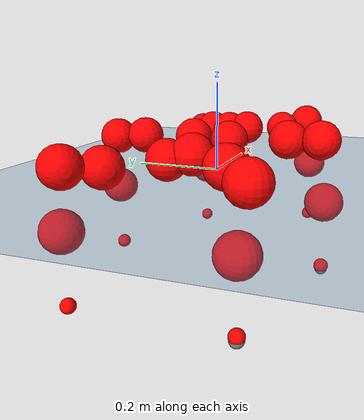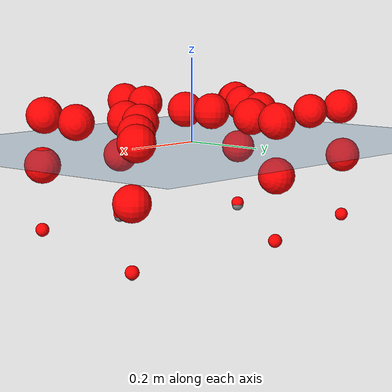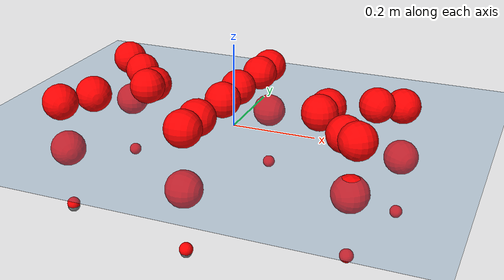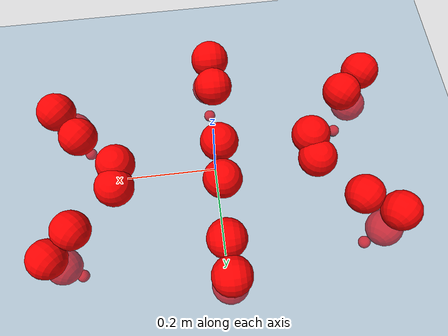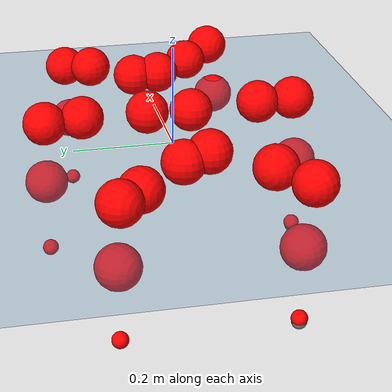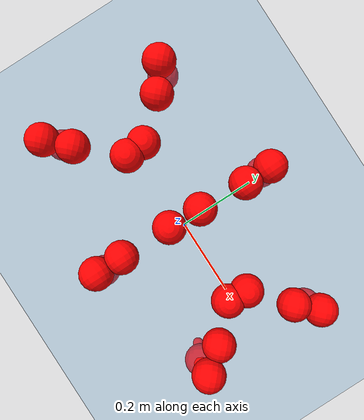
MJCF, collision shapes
<mujoco model="Golem">
  <compiler angle="radian" assetdir="assets" balanceinertia="true" inertiafromgeom="false"/>

  <option timestep="0.005" density="1.2" viscosity="2e-05"/>

  <size nkey="1"/>

  <visual>
    <quality shadowsize="8192"/>
    <map shadowclip="0.5"/>
  </visual>

  <default>
    <default class="/">
      <joint armature="0.01" damping="0.01" frictionloss="0.01"/>
      <geom contype="0" conaffinity="0" group="1" solref="-1000 -80"/>
      <site size="0.01 0.005 0.005" group="5"/>
      <general forcelimited="true" biastype="affine" gainprm="25" biasprm="0 -25 -0.5"/>
      <default class="visual">
        <geom type="mesh" group="2"/>
      </default>
      <default class="collision">
        <geom group="3"/>
      </default>
      <default class="foot">
        <geom size="0.01 0 0" condim="6" group="4" priority="1" solimp="0.015 1 0.01"/>
      </default>
      <default class="reward_collision_sphere">
        <geom group="5" rgba="1 0 0 1"/>
      </default>
    </default>
  </default>

  <asset>
    <texture type="skybox" colorspace="auto" name="//unnamed_texture_0" builtin="gradient" rgb1="0.95 0.95 0.95" rgb2="0.95 0.95 0.95" width="100" height="600"/>
    <texture type="2d" colorspace="auto" name="texplane" builtin="checker" rgb1="0.345 0.575 0.748" rgb2="0.345 0.575 0.748" markrgb="1 1 1" width="512" height="512"/>
    <material name="MatPlane" class="/" texture="texplane" texuniform="true" texrepeat="2 2" specular="0.9"/>
    <mesh name="body" class="/" file="body.stl" scale="0.001 0.001 0.001"/>
    <mesh name="coxa" class="/" file="coxa.stl" scale="0.001 0.001 0.001"/>
    <mesh name="femur" class="/" file="femur.stl" scale="0.001 0.001 0.001"/>
    <mesh name="tibia" class="/" file="tibia.stl" scale="0.001 0.001 0.001"/>
    <mesh name="tarsus" class="/" file="tarsus.stl" scale="0.001 0.001 0.001"/>
  </asset>

  <worldbody>
    <geom name="floor" class="/" size="100 100 0.125" type="plane" group="0" material="MatPlane"/>
    <light name="toplight_shadow" class="/" pos="0 0 5" dir="0.0990148 0.0990148 -0.990148" type="directional" ambient="0.04 0.04 0.04" diffuse="0.55 0.55 0.55" specular="0.12 0.12 0.12"/>
    <light name="toplight_fill" class="/" pos="0 0 5" dir="0.0990148 0.0990148 -0.990148" type="directional" castshadow="false" ambient="0.04 0.04 0.04" diffuse="0.3 0.3 0.3" specular="0.08 0.08 0.08"/>
    <body name="trunk" pos="0.000382596 0.0021394 0.00855164" quat="0.999986 -0.000872415 -0.00368054 0.00367909">
      <inertial pos="-0.00562259 0.00566997 -0.00910323" quat="0.999741 -0.00340703 0.000297991 -0.0224969" mass="5.40068" diaginertia="0.0583947 0.00167745 0.0157076"/>
      <joint name="//unnamed_joint_0" type="free"/>
      <geom name="//unnamed_geom_1" class="/" pos="0 0 0.0701551" quat="1 0 0 0" type="mesh" rgba="0.9 0.9 0.9 1" mesh="body"/>
      <site name="imu" class="/" pos="0.199636 -0.0546717 0.0402714" size="0.0105639"/>
      <camera name="track" class="/" pos="0 -1.35568 0" quat="0.707107 0.707107 0 0" mode="trackcom"/>
      <camera name="ego_camera" class="/" pos="0.181371 0 0.109617" quat="-0.5 -0.5 0.5 0.5"/>
      <body name="coxa_RR" pos="-0.244736 -0.0555454 0.070141" quat="0.379608 -0.00300748 0.00556693 -0.925126">
        <inertial pos="-0.00972968 -0.00427758 0.00745806" quat="0.999556 -0.00831474 -0.0041653 -0.0283229" mass="0.211491" diaginertia="0.058117 0.00127227 0.0135158"/>
        <joint name="coxa_joint_RR" class="/" pos="0 0 0" axis="0.0199224 0.0193497 -0.999614" range="-3.25617 3.22385" armature="0.0100443" damping="0.0222095" frictionloss="0.00782373"/>
        <geom name="//unnamed_geom_2" class="/" type="mesh" rgba="0.2 0.2 0.2 1" mesh="coxa"/>
        <geom name="//unnamed_geom_3" class="reward_collision_sphere" size="0.0422557" pos="-0.0418549 0 0"/>
        <body name="femur_RR" pos="0.0909361 0.00628645 0.00163585" quat="0.500828 -0.495771 0.498846 0.504515">
          <inertial pos="0.000135093 -0.0136264 -0.00713272" quat="0.99913 0.012975 -0.0386969 -0.00861108" mass="0.268596" diaginertia="0.0545963 0.00176949 0.0179313"/>
          <joint name="femur_joint_RR" class="/" pos="0 0 0" axis="0.000103286 -0.00990835 -0.999951" range="-3.2301 3.23069" armature="0.00516889" damping="0" frictionloss="0.0107224"/>
          <geom name="//unnamed_geom_4" class="/" type="mesh" rgba="0.9 0.9 0.9 1" mesh="femur"/>
          <geom name="//unnamed_geom_5" class="reward_collision_sphere" size="0.0422557"/>
          <body name="tibia_RR" pos="0.00820174 -0.0790438 -0.00167596" quat="2.42288e-05 1 -3.73956e-05 1.74075e-06">
            <inertial pos="-0.00186811 -0.0126135 -0.0025309" quat="0.999999 5.94864e-05 0.00126333 -0.000688005" mass="0.262449" diaginertia="0.0591027 0.00158481 0.0178472"/>
            <joint name="tibia_joint_RR" class="/" pos="0 0 0" axis="-0.0128622 0.0595597 0.998142" stiffness="0.0459928" range="-3.39328 3.08114" armature="0.0149067" damping="0.0448068" frictionloss="0.00289996"/>
            <geom name="//unnamed_geom_6" class="/" type="mesh" rgba="0.2 0.2 0.2 1" mesh="tibia"/>
            <geom name="//unnamed_geom_7" class="reward_collision_sphere" size="0.0422557"/>
            <body name="tarsus_RR" pos="0.124584 -0.00992451 0.0123764" quat="0.999994 -0.00235987 0.00109137 0.00248103">
              <inertial pos="0.0775761 0.00271169 -0.00925394" quat="0.517273 0.472971 0.49864 0.509985" mass="0.270263" diaginertia="0.0589471 0.00172191 0.014877"/>
              <joint name="tarsus_joint_RR" class="/" pos="0 0 0" axis="0.0314431 0.0288251 0.99909" range="-2.991 3.15554" armature="0.0133086" damping="0" frictionloss="0.00976232"/>
              <geom name="//unnamed_geom_8" class="/" type="mesh" rgba="0.9 0.9 0.9 1" mesh="tarsus"/>
              <geom name="foot_1" class="foot" size="0.0148483" pos="0.156258 0 0" quat="0 -0.707107 0 0.707107"/>
              <geom name="//unnamed_geom_10" class="reward_collision_sphere" size="0.0422557"/>
              <geom name="//unnamed_geom_11" class="reward_collision_sphere" size="0.0158459" pos="0.14998 0 0"/>
              <site name="foot_1" class="foot" pos="0.156258 0 0" quat="0 -0.707107 0 0.707107" size="0.0105639"/>
            </body>
          </body>
        </body>
      </body>
      <body name="coxa_RM" pos="-0.0141312 -0.0776192 0.0663072" quat="0.707273 0.00141659 -0.000925826 -0.706938">
        <inertial pos="-0.000402028 0.00117406 0.0110843" quat="0.997614 0.0376031 0.010529 -0.0569421" mass="0.211096" diaginertia="0.0435213 0.00099143 0.0114288"/>
        <joint name="coxa_joint_RM" class="/" pos="0 0 0" axis="0.0368757 -0.0547774 -0.997817" stiffness="0.0326288" range="-3.14732 3.28145" armature="0.0125655" damping="2.06484e-06" frictionloss="0.00597383"/>
        <geom name="//unnamed_geom_12" class="/" type="mesh" rgba="0.2 0.2 0.2 1" mesh="coxa"/>
        <geom name="//unnamed_geom_13" class="reward_collision_sphere" size="0.0422557" pos="-0.0418549 0 0"/>
        <body name="femur_RM" pos="0.0930692 -0.00276342 0.00725022" quat="0.499992 -0.500065 0.499989 0.499954">
          <inertial pos="0.000557017 -0.00960269 0.00118587" quat="0.999945 -0.0075048 -0.00584479 -0.00440582" mass="0.217813" diaginertia="0.0612358 0.00144513 0.0174259"/>
          <joint name="femur_joint_RM" class="/" pos="0 0 0" axis="0.00291853 -0.000884879 -0.999995" stiffness="0.049675" range="-3.35173 3.00331" armature="0.00579785" damping="0.0153434" frictionloss="0.00431902"/>
          <geom name="//unnamed_geom_14" class="/" type="mesh" rgba="0.9 0.9 0.9 1" mesh="femur"/>
          <geom name="//unnamed_geom_15" class="reward_collision_sphere" size="0.0422557"/>
          <body name="tibia_RM" pos="-0.00258988 -0.071468 -0.000595855" quat="-0.000489077 1 6.68572e-05 8.23398e-05">
            <inertial pos="-0.000400323 8.25399e-05 -0.0100468" quat="0.999912 0.00376046 -0.012333 0.00313201" mass="0.197855" diaginertia="0.0523599 0.00140265 0.0171021"/>
            <joint name="tibia_joint_RM" class="/" pos="0 0 0" axis="-0.0278905 -0.0559247 0.998045" range="-3.25421 2.95846" armature="0.0173815" damping="0.010871" frictionloss="0.00394468"/>
            <geom name="//unnamed_geom_16" class="/" type="mesh" rgba="0.2 0.2 0.2 1" mesh="tibia"/>
            <geom name="//unnamed_geom_17" class="reward_collision_sphere" size="0.0422557"/>
            <body name="tarsus_RM" pos="0.137212 0.0111925 -0.00302916" quat="0.999989 0.000795184 0.000981781 0.0045074">
              <inertial pos="0.0854048 0.00162623 0.000734822" quat="0.498997 0.502887 0.500126 0.497977" mass="0.174295" diaginertia="0.0447653 0.0012144 0.0131577"/>
              <joint name="tarsus_joint_RM" class="/" pos="0 0 0" axis="0.0261109 -0.0089446 0.999619" stiffness="0.00256739" range="-3.24228 3.1954" armature="0.0138879" damping="0" frictionloss="0.00888069"/>
              <geom name="//unnamed_geom_18" class="/" type="mesh" rgba="0.9 0.9 0.9 1" mesh="tarsus"/>
              <geom name="foot_2" class="foot" size="0.01376" pos="0.156258 0 0" quat="0 -0.707107 0 0.707107"/>
              <geom name="//unnamed_geom_20" class="reward_collision_sphere" size="0.0422557"/>
              <geom name="//unnamed_geom_21" class="reward_collision_sphere" size="0.0158459" pos="0.14998 0 0"/>
              <site name="foot_2" class="foot" pos="0.156258 0 0" quat="0 -0.707107 0 0.707107" size="0.0105639"/>
            </body>
          </body>
        </body>
      </body>
      <body name="coxa_RF" pos="0.242675 -0.0434861 0.0599132" quat="0.923829 -0.000303847 -3.14068e-05 -0.382805">
        <inertial pos="0.012886 -0.000729577 0.00996394" quat="0.999147 -0.0128765 -0.0373802 0.0119168" mass="0.224675" diaginertia="0.0424083 0.00114436 0.0131991"/>
        <joint name="coxa_joint_RF" class="/" pos="0 0 0" axis="-0.00733459 0.0131869 -0.999886" stiffness="0.0512575" range="-3.149 3.30633" armature="0.0116332" damping="0" frictionloss="0.00423202"/>
        <geom name="//unnamed_geom_22" class="/" type="mesh" rgba="0.2 0.2 0.2 1" mesh="coxa"/>
        <geom name="//unnamed_geom_23" class="reward_collision_sphere" size="0.0422557" pos="-0.0418549 0 0"/>
        <body name="femur_RF" pos="0.0705656 0.00168908 -0.00765258" quat="0.501743 -0.50089 0.501879 0.495461">
          <inertial pos="-0.00184637 0.00040201 0.00328737" quat="0.999332 0.0288483 -0.00234808 0.0223057" mass="0.228517" diaginertia="0.0588786 0.00160594 0.0173814"/>
          <joint name="femur_joint_RF" class="/" pos="0 0 0" axis="0.0209674 -0.0119531 -0.999709" stiffness="0.00210624" range="-3.26603 3.16553" armature="0.00947578" damping="0.0145047" frictionloss="0.00983611"/>
          <geom name="//unnamed_geom_24" class="/" type="mesh" rgba="0.9 0.9 0.9 1" mesh="femur"/>
          <geom name="//unnamed_geom_25" class="reward_collision_sphere" size="0.0422557"/>
          <body name="tibia_RF" pos="-0.0146998 -0.0721761 -0.0109453" quat="0.000122865 0.999996 -0.00156726 -0.0021408">
            <inertial pos="-0.00242072 0.0123041 0.0104729" quat="0.998251 0.0132235 -0.057564 -0.00261533" mass="0.257164" diaginertia="0.0662607 0.0017479 0.0155287"/>
            <joint name="tibia_joint_RF" class="/" pos="0 0 0" axis="0.0570915 -0.0139076 0.998272" stiffness="0.0704415" range="-3.0046 3.13333" armature="0.0106128" damping="0.0403978" frictionloss="0.0147454"/>
            <geom name="//unnamed_geom_26" class="/" type="mesh" rgba="0.2 0.2 0.2 1" mesh="tibia"/>
            <geom name="//unnamed_geom_27" class="reward_collision_sphere" size="0.0422557"/>
            <body name="tarsus_RF" pos="0.11672 0.00442005 0.0133362" quat="1 -3.63769e-05 -3.18611e-05 3.79818e-06">
              <inertial pos="0.0804879 -0.00220589 0.00101742" quat="0.501889 0.489328 0.519514 0.488642" mass="0.254131" diaginertia="0.0616566 0.00175717 0.0166937"/>
              <joint name="tarsus_joint_RF" class="/" pos="0 0 0" axis="0.0151336 -0.0679016 0.997577" range="-3.10307 3.19743" armature="0.0133355" damping="0.0131978" frictionloss="0.00656925"/>
              <geom name="//unnamed_geom_28" class="/" type="mesh" rgba="0.9 0.9 0.9 1" mesh="tarsus"/>
              <geom name="foot_3" class="foot" size="0.00795627" pos="0.156258 0 0" quat="0 -0.707107 0 0.707107"/>
              <geom name="//unnamed_geom_30" class="reward_collision_sphere" size="0.0422557"/>
              <geom name="//unnamed_geom_31" class="reward_collision_sphere" size="0.0158459" pos="0.14998 0 0"/>
              <site name="foot_3" class="foot" pos="0.156258 0 0" quat="0 -0.707107 0 0.707107" size="0.0105639"/>
            </body>
          </body>
        </body>
      </body>
      <body name="coxa_LR" pos="-0.251923 0.0537715 0.0572291" quat="0.380958 -0.00205301 0.00497427 0.924577">
        <inertial pos="0.00675179 -0.0105735 0.0112858" quat="0.999906 -0.0114409 0.00429385 -0.00615992" mass="0.22902" diaginertia="0.0540222 0.00153962 0.0152139"/>
        <joint name="coxa_joint_LR" class="/" pos="0 0 0" axis="-0.0148646 0.0474022 -0.998765" range="-3.01389 2.89662" armature="0.0098529" damping="0.0035641" frictionloss="0.00558658"/>
        <geom name="//unnamed_geom_32" class="/" type="mesh" rgba="0.2 0.2 0.2 1" mesh="coxa"/>
        <geom name="//unnamed_geom_33" class="reward_collision_sphere" size="0.0422557" pos="-0.0418549 0 0"/>
        <body name="femur_LR" pos="0.0835705 -0.0072858 -0.00290306" quat="0.501365 -0.501255 0.499279 0.498093">
          <inertial pos="-0.00103399 -0.00930823 -0.00448017" quat="0.9979 0.00719453 0.0240698 0.059696" mass="0.265065" diaginertia="0.0482555 0.00157143 0.0182561"/>
          <joint name="femur_joint_LR" class="/" pos="0 0 0" axis="0.0738026 -0.0120069 0.997201" range="-3.00763 3.03175" armature="0.00358064" damping="0" frictionloss="0.0109072"/>
          <geom name="//unnamed_geom_34" class="/" type="mesh" rgba="0.9 0.9 0.9 1" mesh="femur"/>
          <geom name="//unnamed_geom_35" class="reward_collision_sphere" size="0.0422557"/>
          <body name="tibia_LR" pos="-0.0108868 -0.0769279 0.00976272" quat="0.00103947 0.999997 -0.000405009 -0.0021897">
            <inertial pos="0.00699627 -0.00488394 -0.0103379" quat="0.998961 -0.0309883 -0.00863042 0.0322879" mass="0.192836" diaginertia="0.0490878 0.00126601 0.016295"/>
            <joint name="tibia_joint_LR" class="/" pos="0 0 0" axis="0.000316693 0.00103895 -0.999999" range="-3.39937 2.94887" armature="0.0165467" damping="0.000978083" frictionloss="0.0107774"/>
            <geom name="//unnamed_geom_36" class="/" type="mesh" rgba="0.2 0.2 0.2 1" mesh="tibia"/>
            <geom name="//unnamed_geom_37" class="reward_collision_sphere" size="0.0422557"/>
            <body name="tarsus_LR" pos="0.120621 0.00722353 0.00174728" quat="1 -6.98123e-05 -8.45771e-05 -0.000306952">
              <inertial pos="0.0838927 0.0115446 -0.00258142" quat="0.501451 0.50134 0.498377 0.498824" mass="0.288015" diaginertia="0.0562187 0.00124197 0.0152443"/>
              <joint name="tarsus_joint_LR" class="/" pos="0 0 0" axis="-0.000263601 -0.000228947 -1" range="-3.08327 2.97718" armature="0.0111272" damping="0.0308802" frictionloss="0.0147357"/>
              <geom name="//unnamed_geom_38" class="/" type="mesh" rgba="0.9 0.9 0.9 1" mesh="tarsus"/>
              <geom name="foot_4" class="foot" size="0.00743062" pos="0.156258 0 0" quat="0.707107 0 -0.707107 0"/>
              <geom name="//unnamed_geom_40" class="reward_collision_sphere" size="0.0422557"/>
              <geom name="//unnamed_geom_41" class="reward_collision_sphere" size="0.0158459" pos="0.14998 0 0"/>
              <site name="foot_4" class="foot" pos="0.156258 0 0" quat="0.707107 0 -0.707107 0" size="0.0105639"/>
            </body>
          </body>
        </body>
      </body>
      <body name="coxa_LM" pos="-0.0106365 0.0928489 0.0676865" quat="0.706987 -0.00155256 0.000970126 0.707224">
        <inertial pos="-0.00053712 4.32222e-05 0.0127398" quat="0.999925 -0.00755048 -0.000578972 0.00964746" mass="0.239918" diaginertia="0.0462726 0.0013434 0.0148145"/>
        <joint name="coxa_joint_LM" class="/" pos="0 0 0" axis="0.0328602 0.0163002 -0.999327" range="-3.09309 3.12812" armature="0.00784026" damping="0.0546735" frictionloss="0.010246"/>
        <geom name="//unnamed_geom_42" class="/" type="mesh" rgba="0.2 0.2 0.2 1" mesh="coxa"/>
        <geom name="//unnamed_geom_43" class="reward_collision_sphere" size="0.0422557" pos="-0.0418549 0 0"/>
        <body name="femur_LM" pos="0.0853331 -0.00728999 -0.00332261" quat="0.499969 -0.500018 0.499937 0.500076">
          <inertial pos="0.00958899 0.00173583 0.014198" quat="0.998804 -0.0461542 -0.00846229 0.0137524" mass="0.247229" diaginertia="0.0573064 0.00151532 0.0171544"/>
          <joint name="femur_joint_LM" class="/" pos="0 0 0" axis="0.00952357 0.0354757 0.999325" range="-3.20994 3.41481" armature="0.0144295" damping="0.018784" frictionloss="0.0163612"/>
          <geom name="//unnamed_geom_44" class="/" type="mesh" rgba="0.9 0.9 0.9 1" mesh="femur"/>
          <geom name="//unnamed_geom_45" class="reward_collision_sphere" size="0.0422557"/>
          <body name="tibia_LM" pos="0.00521057 -0.0740082 0.00082033" quat="0.00184656 0.999994 0.00225471 -0.00184675">
            <inertial pos="-0.00614884 0.000684386 -0.00125328" quat="0.999938 0.00836612 -0.0044705 -0.00578659" mass="0.252567" diaginertia="0.0629794 0.00166483 0.0184068"/>
            <joint name="tibia_joint_LM" class="/" pos="0 0 0" axis="-0.0382432 0.0392343 -0.998498" range="-3.35278 3.28072" armature="0.0030664" damping="0.0472638" frictionloss="0.00499379"/>
            <geom name="//unnamed_geom_46" class="/" type="mesh" rgba="0.2 0.2 0.2 1" mesh="tibia"/>
            <geom name="//unnamed_geom_47" class="reward_collision_sphere" size="0.0422557"/>
            <body name="tarsus_LM" pos="0.125278 0.00220306 -0.000576989" quat="1 0.000248408 0.000283566 7.15592e-05">
              <inertial pos="0.0900222 0.00793333 0.00112788" quat="0.499646 0.474024 0.523397 0.501708" mass="0.276108" diaginertia="0.0653297 0.00200256 0.0198677"/>
              <joint name="tarsus_joint_LM" class="/" pos="0 0 0" axis="-0.0255585 -0.029667 -0.999233" range="-3.1564 3.11984" armature="0.0124277" damping="0" frictionloss="0.00336538"/>
              <geom name="//unnamed_geom_48" class="/" type="mesh" rgba="0.9 0.9 0.9 1" mesh="tarsus"/>
              <geom name="foot_5" class="foot" size="0.00755517" pos="0.156258 0 0" quat="0.707107 0 -0.707107 0"/>
              <geom name="//unnamed_geom_50" class="reward_collision_sphere" size="0.0422557"/>
              <geom name="//unnamed_geom_51" class="reward_collision_sphere" size="0.0158459" pos="0.14998 0 0"/>
              <site name="foot_5" class="foot" pos="0.156258 0 0" quat="0.707107 0 -0.707107 0" size="0.0105639"/>
            </body>
          </body>
        </body>
      </body>
      <body name="coxa_LF" pos="0.247782 0.0670854 0.0558632" quat="0.923481 0.000765136 0.0019569 0.383639">
        <inertial pos="0.0125656 0.0143001 0.00911866" quat="0.999782 0.00979669 0.0179811 -0.0040999" mass="0.263937" diaginertia="0.0594163 0.00190133 0.0156326"/>
        <joint name="coxa_joint_LF" class="/" pos="0 0 0" axis="0.0573211 0.0257245 -0.998024" stiffness="0.00164689" range="-2.98831 3.1488" armature="0.00843597" damping="0" frictionloss="0.0157889"/>
        <geom name="//unnamed_geom_52" class="/" type="mesh" rgba="0.2 0.2 0.2 1" mesh="coxa"/>
        <geom name="//unnamed_geom_53" class="reward_collision_sphere" size="0.0422557" pos="-0.0418549 0 0"/>
        <body name="femur_LF" pos="0.0818091 -0.0120222 -0.0115041" quat="0.496302 -0.501979 0.499412 0.502283">
          <inertial pos="0.00154329 0.00784997 -0.00445048" quat="0.999994 -0.00303068 -0.00136445 0.000615391" mass="0.255012" diaginertia="0.0704282 0.00165031 0.0180343"/>
          <joint name="femur_joint_LF" class="/" pos="0 0 0" axis="-0.0255901 0.0554701 0.998132" range="-3.00862 2.9358" armature="0.00909611" damping="0.00470933" frictionloss="0.010208"/>
          <geom name="//unnamed_geom_54" class="/" type="mesh" rgba="0.9 0.9 0.9 1" mesh="femur"/>
          <geom name="//unnamed_geom_55" class="reward_collision_sphere" size="0.0422557"/>
          <body name="tibia_LF" pos="0.0132226 -0.0726173 -0.00159891" quat="0.000316996 0.999994 0.00305419 0.00187762">
            <inertial pos="-0.00813927 -0.0120053 0.00712573" quat="0.999997 0.00196792 -0.00121257 -0.000826463" mass="0.220464" diaginertia="0.0613398 0.00148727 0.0181404"/>
            <joint name="tibia_joint_LF" class="/" pos="0 0 0" axis="0.00132039 0.0428976 -0.999079" stiffness="0.0622681" range="-3.14903 3.34378" armature="0.013011" damping="0.0421921" frictionloss="0.00850311"/>
            <geom name="//unnamed_geom_56" class="/" type="mesh" rgba="0.2 0.2 0.2 1" mesh="tibia"/>
            <geom name="//unnamed_geom_57" class="reward_collision_sphere" size="0.0422557"/>
            <body name="tarsus_LF" pos="0.129463 0.000137657 0.010018" quat="1 0.000211047 -0.00030734 -8.19345e-05">
              <inertial pos="0.0982254 -0.00317245 0.00388501" quat="0.492222 0.55312 0.49932 0.449951" mass="0.248721" diaginertia="0.0517108 0.00138698 0.0158036"/>
              <joint name="tarsus_joint_LF" class="/" pos="0 0 0" axis="-0.00585099 0.074536 -0.997201" range="-3.2735 3.32614" armature="0.0117678" damping="0.0548453" frictionloss="0.0139433"/>
              <geom name="//unnamed_geom_58" class="/" type="mesh" rgba="0.9 0.9 0.9 1" mesh="tarsus"/>
              <geom name="foot_6" class="foot" size="0.010515" pos="0.156258 0 0" quat="0.707107 0 -0.707107 0"/>
              <geom name="//unnamed_geom_60" class="reward_collision_sphere" size="0.0422557"/>
              <geom name="//unnamed_geom_61" class="reward_collision_sphere" size="0.0158459" pos="0.14998 0 0"/>
              <site name="foot_6" class="foot" pos="0.156258 0 0" quat="0.707107 0 -0.707107 0" size="0.0105639"/>
            </body>
          </body>
        </body>
      </body>
    </body>
  </worldbody>

  <contact>
    <pair class="/" geom1="floor" geom2="foot_1" name="//unnamed_contact_0"/>
    <pair class="/" geom1="floor" geom2="foot_2" name="//unnamed_contact_1"/>
    <pair class="/" geom1="floor" geom2="foot_3" name="//unnamed_contact_2"/>
    <pair class="/" geom1="floor" geom2="foot_4" name="//unnamed_contact_3"/>
    <pair class="/" geom1="floor" geom2="foot_5" name="//unnamed_contact_4"/>
    <pair class="/" geom1="floor" geom2="foot_6" name="//unnamed_contact_5"/>
  </contact>

  <actuator>
    <general name="coxa_joint_RR" class="/" joint="coxa_joint_RR" forcerange="-7.434 7.434" gainprm="23.9293" biasprm="0 -23.9293 -0.456126"/>
    <general name="femur_joint_RR" class="/" joint="femur_joint_RR" forcerange="-6.60765 6.60765" gainprm="23.9293" biasprm="0 -23.9293 -0.456126"/>
    <general name="tibia_joint_RR" class="/" joint="tibia_joint_RR" forcerange="-7.36236 7.36236" gainprm="23.9293" biasprm="0 -23.9293 -0.456126"/>
    <general name="tarsus_joint_RR" class="/" joint="tarsus_joint_RR" forcerange="-4.66142 4.66142" gainprm="23.9293" biasprm="0 -23.9293 -0.456126"/>
    <general name="coxa_joint_RM" class="/" joint="coxa_joint_RM" forcerange="-9.29154 9.29154" gainprm="23.9293" biasprm="0 -23.9293 -0.456126"/>
    <general name="femur_joint_RM" class="/" joint="femur_joint_RM" forcerange="-4.63097 4.63097" gainprm="23.9293" biasprm="0 -23.9293 -0.456126"/>
    <general name="tibia_joint_RM" class="/" joint="tibia_joint_RM" forcerange="-6.51078 6.51078" gainprm="23.9293" biasprm="0 -23.9293 -0.456126"/>
    <general name="tarsus_joint_RM" class="/" joint="tarsus_joint_RM" forcerange="-6.01008 6.01008" gainprm="23.9293" biasprm="0 -23.9293 -0.456126"/>
    <general name="coxa_joint_RF" class="/" joint="coxa_joint_RF" forcerange="-10.7524 10.7524" gainprm="23.9293" biasprm="0 -23.9293 -0.456126"/>
    <general name="femur_joint_RF" class="/" joint="femur_joint_RF" forcerange="-7.22085 7.22085" gainprm="23.9293" biasprm="0 -23.9293 -0.456126"/>
    <general name="tibia_joint_RF" class="/" joint="tibia_joint_RF" forcerange="-6.29028 6.29028" gainprm="23.9293" biasprm="0 -23.9293 -0.456126"/>
    <general name="tarsus_joint_RF" class="/" joint="tarsus_joint_RF" forcerange="-7.1082 7.1082" gainprm="23.9293" biasprm="0 -23.9293 -0.456126"/>
    <general name="coxa_joint_LR" class="/" joint="coxa_joint_LR" forcerange="-8.04587 8.04587" gainprm="23.9293" biasprm="0 -23.9293 -0.456126"/>
    <general name="femur_joint_LR" class="/" joint="femur_joint_LR" forcerange="-7.51477 7.51477" gainprm="23.9293" biasprm="0 -23.9293 -0.456126"/>
    <general name="tibia_joint_LR" class="/" joint="tibia_joint_LR" forcerange="-7.98917 7.98917" gainprm="23.9293" biasprm="0 -23.9293 -0.456126"/>
    <general name="tarsus_joint_LR" class="/" joint="tarsus_joint_LR" forcerange="-7.71882 7.71882" gainprm="23.9293" biasprm="0 -23.9293 -0.456126"/>
    <general name="coxa_joint_LM" class="/" joint="coxa_joint_LM" forcerange="-8.56535 8.56535" gainprm="23.9293" biasprm="0 -23.9293 -0.456126"/>
    <general name="femur_joint_LM" class="/" joint="femur_joint_LM" forcerange="-8.443 8.443" gainprm="23.9293" biasprm="0 -23.9293 -0.456126"/>
    <general name="tibia_joint_LM" class="/" joint="tibia_joint_LM" forcerange="-7.75899 7.75899" gainprm="23.9293" biasprm="0 -23.9293 -0.456126"/>
    <general name="tarsus_joint_LM" class="/" joint="tarsus_joint_LM" forcerange="-6.07812 6.07812" gainprm="23.9293" biasprm="0 -23.9293 -0.456126"/>
    <general name="coxa_joint_LF" class="/" joint="coxa_joint_LF" forcerange="-9.7666 9.7666" gainprm="23.9293" biasprm="0 -23.9293 -0.456126"/>
    <general name="femur_joint_LF" class="/" joint="femur_joint_LF" forcerange="-8.01742 8.01742" gainprm="23.9293" biasprm="0 -23.9293 -0.456126"/>
    <general name="tibia_joint_LF" class="/" joint="tibia_joint_LF" forcerange="-8.07795 8.07795" gainprm="23.9293" biasprm="0 -23.9293 -0.456126"/>
    <general name="tarsus_joint_LF" class="/" joint="tarsus_joint_LF" forcerange="-8.0764 8.0764" gainprm="23.9293" biasprm="0 -23.9293 -0.456126"/>
  </actuator>

  <sensor>
    <gyro site="imu" name="imu_angular_velocity"/>
    <velocimeter site="imu" name="imu_linear_velocity"/>
    <framelinvel objtype="site" objname="foot_1" name="foot_1_global_linear_velocity"/>
    <framelinvel objtype="site" objname="foot_2" name="foot_2_global_linear_velocity"/>
    <framelinvel objtype="site" objname="foot_3" name="foot_3_global_linear_velocity"/>
    <framelinvel objtype="site" objname="foot_4" name="foot_4_global_linear_velocity"/>
    <framelinvel objtype="site" objname="foot_5" name="foot_5_global_linear_velocity"/>
    <framelinvel objtype="site" objname="foot_6" name="foot_6_global_linear_velocity"/>
  </sensor>

  <keyframe>
    <key name="home" qpos="0 0 0.1457 1 0 0 0 0 0 0 0 0 0 0 0 0 0 0 0 0 0 0 0 0 0 0 0 0 0 0 0"/>
  </keyframe>
</mujoco>
